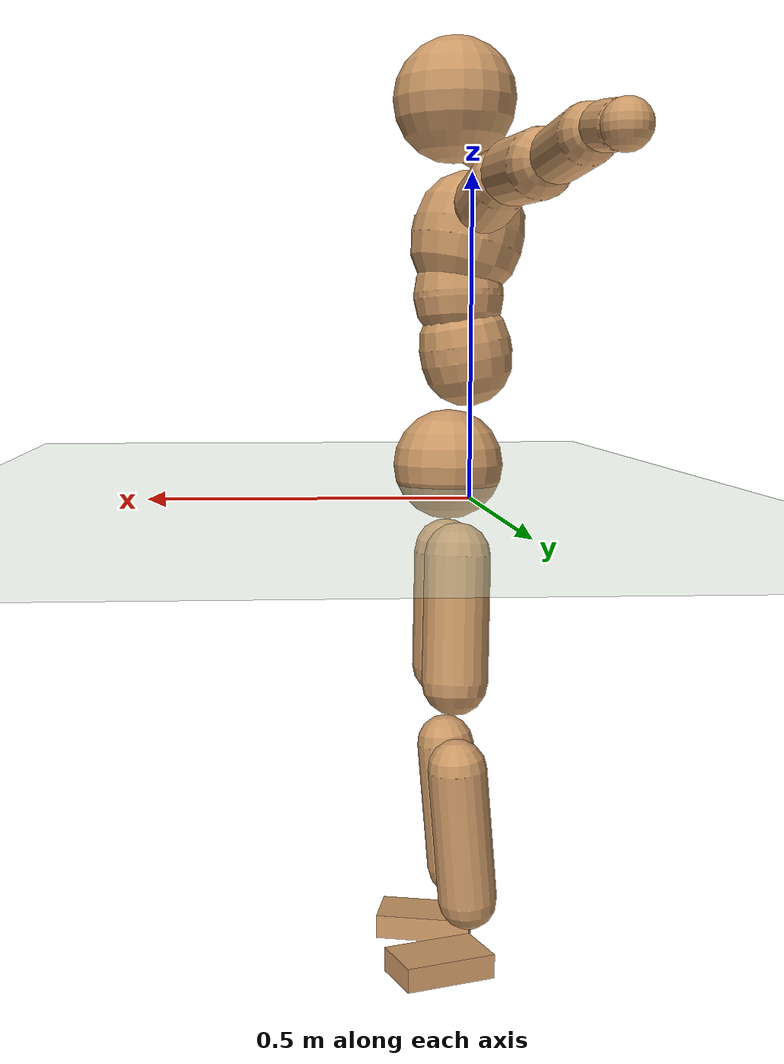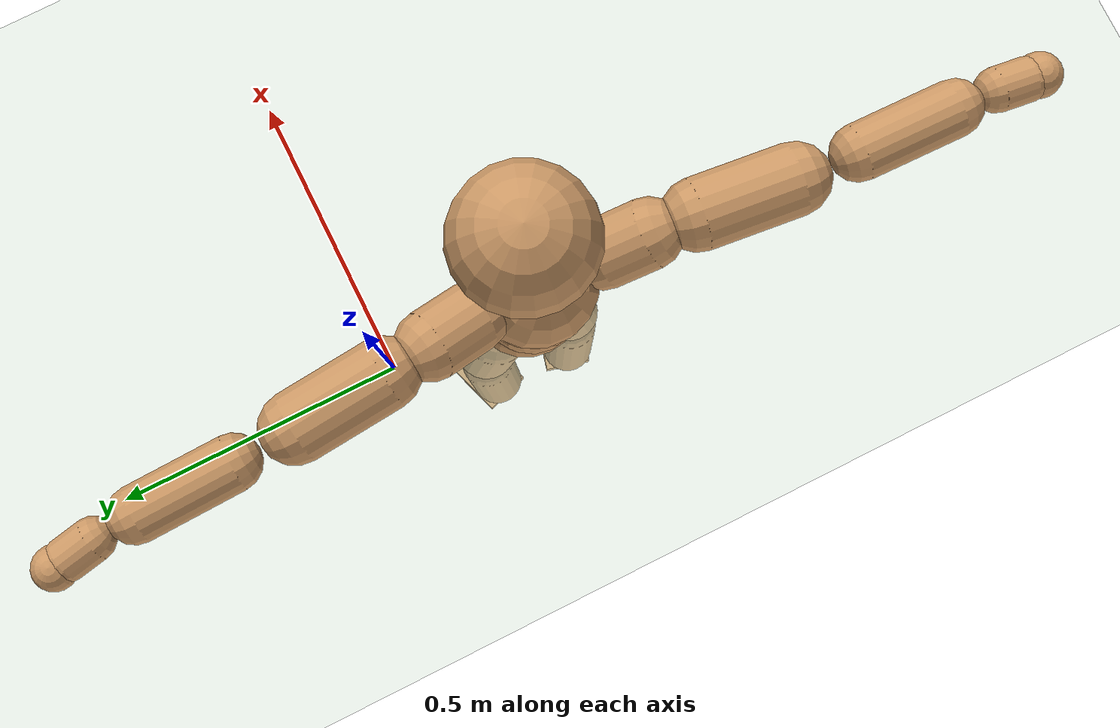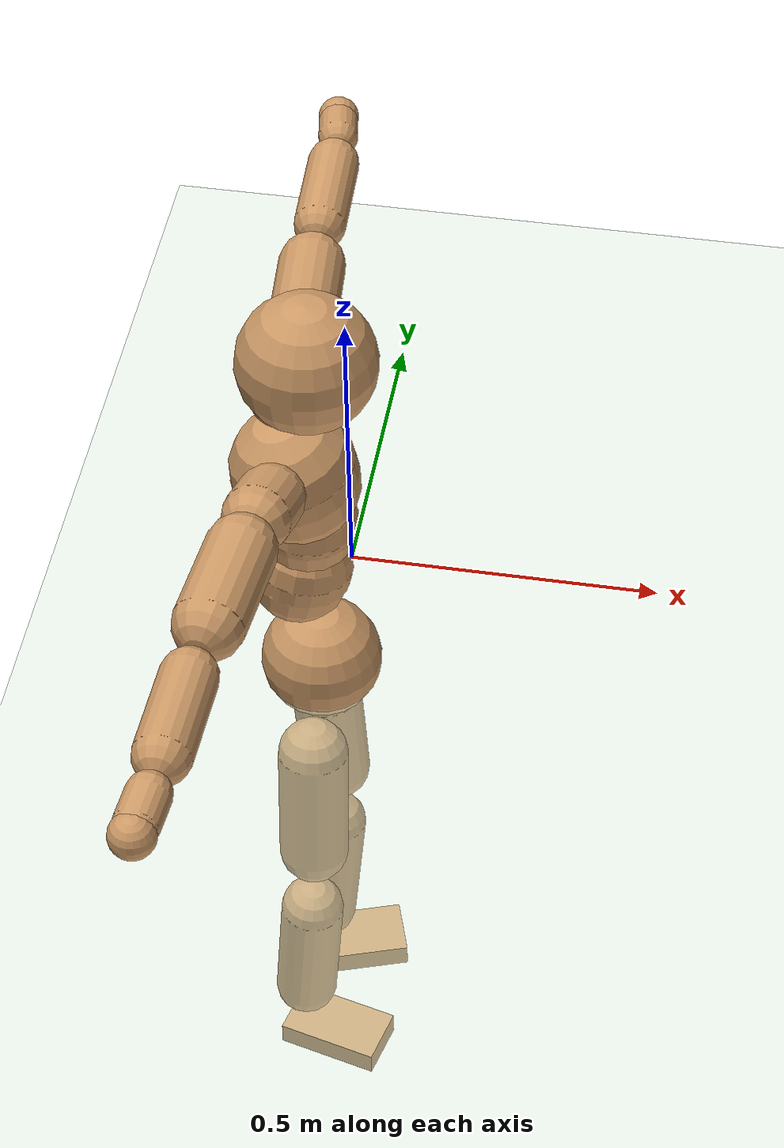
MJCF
<mujoco model="humanoid">
  <compiler coordinate="local"/>
  <default>
    <joint damping="0.0" armature="0.01" stiffness="0.0" limited="true"/>
    <geom conaffinity="1" condim="3" contype="7" margin="0.001" rgba="0.8 0.6 .4 1"/>
  </default>
  <asset>
    <texture type="skybox" builtin="gradient" rgb1=".4 .5 .6" rgb2="0 0 0" width="100" height="100"/>
    <texture builtin="flat" height="1278" mark="cross" markrgb="1 1 1" name="texgeom" random="0.01" rgb1="0.8 0.6 0.4" rgb2="0.8 0.6 0.4" type="cube" width="127"/>
    <texture builtin="checker" height="100" name="texplane" rgb1="0 0 0" rgb2="0.8 0.8 0.8" type="2d" width="100"/>
    <material name="MatPlane" reflectance="0.5" shininess="1" specular="1" texrepeat="60 60" texture="texplane"/>
    <material name="geom" texture="texgeom" texuniform="true"/>
  </asset>
  <worldbody>
    <light cutoff="100" diffuse="1 1 1" dir="-0 0 -1.3" directional="true" exponent="1" pos="0 0 1.3" specular=".1 .1 .1"/>
    <geom conaffinity="1" condim="3" name="floor" pos="0 0 0" rgba="0.8 0.9 0.8 1" size="100 100 .2" type="plane" material="MatPlane"/>
    <body name="Pelvis" pos="-0.0011 -0.2481 0.0335">
      <freejoint name="Pelvis"/>
      <geom type="sphere" contype="1" conaffinity="1" density="500" size="0.0949" pos="0.0000 0.0000 0.0000" name="Pelvis"/>
      <body name="L_Hip" pos="-0.0107 0.0555 -0.0796">
        <joint name="L_Hip_x" type="hinge" pos="0 0 0" axis="1 0 0" stiffness="800" damping="80" armature="0.02" range="-180.0000 180.0000"/>
        <joint name="L_Hip_y" type="hinge" pos="0 0 0" axis="0 1 0" stiffness="800" damping="80" armature="0.02" range="-180.0000 180.0000"/>
        <joint name="L_Hip_z" type="hinge" pos="0 0 0" axis="0 0 1" stiffness="800" damping="80" armature="0.02" range="-180.0000 180.0000"/>
        <geom type="capsule" contype="1" conaffinity="1" density="500" fromto="0.0020 0.0078 -0.0717 0.0081 0.0312 -0.2867" size="0.0564" name="L_Hip"/>
        <body name="L_Knee" pos="0.0101 0.039 -0.3584">
          <joint name="L_Knee_x" type="hinge" pos="0 0 0" axis="1 0 0" stiffness="800" damping="80" armature="0.02" range="-180.0000 180.0000"/>
          <joint name="L_Knee_y" type="hinge" pos="0 0 0" axis="0 1 0" stiffness="800" damping="80" armature="0.02" range="-180.0000 180.0000"/>
          <joint name="L_Knee_z" type="hinge" pos="0 0 0" axis="0 0 1" stiffness="800" damping="80" armature="0.02" range="-180.0000 180.0000"/>
          <geom type="capsule" contype="1" conaffinity="1" density="500" fromto="-0.0071 -0.0027 -0.0785 -0.0284 -0.0108 -0.3138" size="0.051" name="L_Knee"/>
          <body name="L_Ankle" pos="-0.0356 -0.0136 -0.3923">
            <joint name="L_Ankle_x" type="hinge" pos="0 0 0" axis="1 0 0" stiffness="800" damping="80" armature="0.02" range="-180.0000 180.0000"/>
            <joint name="L_Ankle_y" type="hinge" pos="0 0 0" axis="0 1 0" stiffness="800" damping="80" armature="0.02" range="-180.0000 180.0000"/>
            <joint name="L_Ankle_z" type="hinge" pos="0 0 0" axis="0 0 1" stiffness="800" damping="80" armature="0.02" range="-180.0000 180.0000"/>
            <geom type="box" contype="1" conaffinity="1" density="500" pos="0.0577 0.0191 -0.0279" size="0.082 0.0488 0.0211" quat="0.9873 0.0000 0.0000 0.1589" name="L_Ankle"/>
            <body name="L_Toe" pos="0.1154 0.0381 -0.0558">
              <joint name="L_Toe_x" type="hinge" pos="0 0 0" axis="1 0 0" stiffness="500" damping="50" armature="0.02" range="-180.0000 180.0000"/>
              <joint name="L_Toe_y" type="hinge" pos="0 0 0" axis="0 1 0" stiffness="500" damping="50" armature="0.02" range="-180.0000 180.0000"/>
              <joint name="L_Toe_z" type="hinge" pos="0 0 0" axis="0 0 1" stiffness="500" damping="50" armature="0.02" range="-180.0000 180.0000"/>
              <geom type="box" contype="1" conaffinity="1" density="500" pos="0.0000 0.0000 0.0283" size="0.001 0.0024 0.0011" quat="0.9865 0.0000 0.0000 0.1640" name="L_Toe"/>
            </body>
          </body>
        </body>
      </body>
      <body name="R_Hip" pos="-0.0065 -0.0567 -0.0883">
        <joint name="R_Hip_x" type="hinge" pos="0 0 0" axis="1 0 0" stiffness="800" damping="80" armature="0.02" range="-180.0000 180.0000"/>
        <joint name="R_Hip_y" type="hinge" pos="0 0 0" axis="0 1 0" stiffness="800" damping="80" armature="0.02" range="-180.0000 180.0000"/>
        <joint name="R_Hip_z" type="hinge" pos="0 0 0" axis="0 0 1" stiffness="800" damping="80" armature="0.02" range="-180.0000 180.0000"/>
        <geom type="capsule" contype="1" conaffinity="1" density="500" fromto="-0.0000 -0.0079 -0.0713 -0.0002 -0.0316 -0.2851" size="0.0561" name="R_Hip"/>
        <body name="R_Knee" pos="-0.0002 -0.0395 -0.3564">
          <joint name="R_Knee_x" type="hinge" pos="0 0 0" axis="1 0 0" stiffness="800" damping="80" armature="0.02" range="-180.0000 180.0000"/>
          <joint name="R_Knee_y" type="hinge" pos="0 0 0" axis="0 1 0" stiffness="800" damping="80" armature="0.02" range="-180.0000 180.0000"/>
          <joint name="R_Knee_z" type="hinge" pos="0 0 0" axis="0 0 1" stiffness="800" damping="80" armature="0.02" range="-180.0000 180.0000"/>
          <geom type="capsule" contype="1" conaffinity="1" density="500" fromto="-0.0064 0.0035 -0.0773 -0.0257 0.0138 -0.3092" size="0.0516" name="R_Knee"/>
          <body name="R_Ankle" pos="-0.0321 0.0173 -0.3865">
            <joint name="R_Ankle_x" type="hinge" pos="0 0 0" axis="1 0 0" stiffness="800" damping="80" armature="0.02" range="-180.0000 180.0000"/>
            <joint name="R_Ankle_y" type="hinge" pos="0 0 0" axis="0 1 0" stiffness="800" damping="80" armature="0.02" range="-180.0000 180.0000"/>
            <joint name="R_Ankle_z" type="hinge" pos="0 0 0" axis="0 0 1" stiffness="800" damping="80" armature="0.02" range="-180.0000 180.0000"/>
            <geom type="box" contype="1" conaffinity="1" density="500" pos="0.0608 -0.0149 -0.0295" size="0.0846 0.0478 0.0211" quat="0.9927 0.0000 0.0000 -0.1202" name="R_Ankle"/>
            <body name="R_Toe" pos="0.1216 -0.0299 -0.059">
              <joint name="R_Toe_x" type="hinge" pos="0 0 0" axis="1 0 0" stiffness="500" damping="50" armature="0.02" range="-180.0000 180.0000"/>
              <joint name="R_Toe_y" type="hinge" pos="0 0 0" axis="0 1 0" stiffness="500" damping="50" armature="0.02" range="-180.0000 180.0000"/>
              <joint name="R_Toe_z" type="hinge" pos="0 0 0" axis="0 0 1" stiffness="500" damping="50" armature="0.02" range="-180.0000 180.0000"/>
              <geom type="box" contype="1" conaffinity="1" density="500" pos="0.0000 0.0000 0.0297" size="0.0011 0.0024 0.0011" quat="0.9938 0.0000 0.0000 -0.1108" name="R_Toe"/>
            </body>
          </body>
        </body>
      </body>
      <body name="Torso" pos="-0.0406 0.0041 0.1245">
        <joint name="Torso_x" type="hinge" pos="0 0 0" axis="1 0 0" stiffness="1000" damping="100" armature="0.02" range="-180.0000 180.0000"/>
        <joint name="Torso_y" type="hinge" pos="0 0 0" axis="0 1 0" stiffness="1000" damping="100" armature="0.02" range="-180.0000 180.0000"/>
        <joint name="Torso_z" type="hinge" pos="0 0 0" axis="0 0 1" stiffness="1000" damping="100" armature="0.02" range="-180.0000 180.0000"/>
        <geom type="capsule" contype="1" conaffinity="1" density="500" fromto="0.0153 0.0032 0.0822 0.0102 0.0022 0.0548" size="0.07905" name="Torso"/>
        <body name="Spine" pos="0.0255 0.0054 0.137">
          <joint name="Spine_x" type="hinge" pos="0 0 0" axis="1 0 0" stiffness="1000" damping="100" armature="0.02" range="-180.0000 180.0000"/>
          <joint name="Spine_y" type="hinge" pos="0 0 0" axis="0 1 0" stiffness="1000" damping="100" armature="0.02" range="-180.0000 180.0000"/>
          <joint name="Spine_z" type="hinge" pos="0 0 0" axis="0 0 1" stiffness="1000" damping="100" armature="0.02" range="-180.0000 180.0000"/>
          <geom type="capsule" contype="1" conaffinity="1" density="500" fromto="0.0012 -0.0014 0.0332 0.0008 -0.0009 0.0221" size="0.076818" name="Spine"/>
          <body name="Chest" pos="0.0019 -0.0023 0.0553">
            <joint name="Chest_x" type="hinge" pos="0 0 0" axis="1 0 0" stiffness="1000" damping="100" armature="0.02" range="-180.0000 180.0000"/>
            <joint name="Chest_y" type="hinge" pos="0 0 0" axis="0 1 0" stiffness="1000" damping="100" armature="0.02" range="-180.0000 180.0000"/>
            <joint name="Chest_z" type="hinge" pos="0 0 0" axis="0 0 1" stiffness="1000" damping="100" armature="0.02" range="-180.0000 180.0000"/>
            <geom type="capsule" contype="1" conaffinity="1" density="500" fromto="-0.0196 -0.0054 0.0872 -0.0131 -0.0036 0.0581" size="0.095604" name="Chest"/>
            <body name="Neck" pos="-0.0435 -0.013 0.2114">
              <joint name="Neck_x" type="hinge" pos="0 0 0" axis="1 0 0" stiffness="500" damping="50" armature="0.02" range="-180.0000 180.0000"/>
              <joint name="Neck_y" type="hinge" pos="0 0 0" axis="0 1 0" stiffness="500" damping="50" armature="0.02" range="-180.0000 180.0000"/>
              <joint name="Neck_z" type="hinge" pos="0 0 0" axis="0 0 1" stiffness="500" damping="50" armature="0.02" range="-180.0000 180.0000"/>
              <geom type="capsule" contype="1" conaffinity="1" density="500" fromto="0.0102 0.0020 0.0173 0.0410 0.0079 0.0691" size="0.042687" name="Neck"/>
              <body name="Head" pos="0.0512 0.0099 0.0864">
                <joint name="Head_x" type="hinge" pos="0 0 0" axis="1 0 0" stiffness="500" damping="50" armature="0.02" range="-180.0000 180.0000"/>
                <joint name="Head_y" type="hinge" pos="0 0 0" axis="0 1 0" stiffness="500" damping="50" armature="0.02" range="-180.0000 180.0000"/>
                <joint name="Head_z" type="hinge" pos="0 0 0" axis="0 0 1" stiffness="500" damping="50" armature="0.02" range="-180.0000 180.0000"/>
                <geom type="sphere" contype="1" conaffinity="1" density="500" size="0.1051" pos="0.0000 0.0000 0.0000" name="Head"/>
              </body>
            </body>
            <body name="L_Thorax" pos="-0.0259 0.0701 0.1123">
              <joint name="L_Thorax_x" type="hinge" pos="0 0 0" axis="1 0 0" stiffness="500" damping="50" armature="0.02" range="-180.0000 180.0000"/>
              <joint name="L_Thorax_y" type="hinge" pos="0 0 0" axis="0 1 0" stiffness="500" damping="50" armature="0.02" range="-180.0000 180.0000"/>
              <joint name="L_Thorax_z" type="hinge" pos="0 0 0" axis="0 0 1" stiffness="500" damping="50" armature="0.02" range="-180.0000 180.0000"/>
              <geom type="capsule" contype="1" conaffinity="1" density="500" fromto="-0.0041 0.0243 0.0081 -0.0165 0.0971 0.0326" size="0.0515" name="L_Thorax"/>
              <body name="L_Shoulder" pos="-0.0206 0.1214 0.0407">
                <joint name="L_Shoulder_x" type="hinge" pos="0 0 0" axis="1 0 0" stiffness="500" damping="50" armature="0.02" range="-720.0000 720.0000"/>
                <joint name="L_Shoulder_y" type="hinge" pos="0 0 0" axis="0 1 0" stiffness="500" damping="50" armature="0.02" range="-720.0000 720.0000"/>
                <joint name="L_Shoulder_z" type="hinge" pos="0 0 0" axis="0 0 1" stiffness="500" damping="50" armature="0.02" range="-720.0000 720.0000"/>
                <geom type="capsule" contype="1" conaffinity="1" density="500" fromto="-0.0040 0.0471 -0.0018 -0.0158 0.1885 -0.0073" size="0.0525" name="L_Shoulder"/>
                <body name="L_Elbow" pos="-0.0198 0.2357 -0.0091">
                  <joint name="L_Elbow_x" type="hinge" pos="0 0 0" axis="1 0 0" stiffness="500" damping="50" armature="0.02" range="-720.0000 720.0000"/>
                  <joint name="L_Elbow_y" type="hinge" pos="0 0 0" axis="0 1 0" stiffness="500" damping="50" armature="0.02" range="-720.0000 720.0000"/>
                  <joint name="L_Elbow_z" type="hinge" pos="0 0 0" axis="0 0 1" stiffness="500" damping="50" armature="0.02" range="-720.0000 720.0000"/>
                  <geom type="capsule" contype="1" conaffinity="1" density="500" fromto="-0.0018 0.0486 0.0020 -0.0071 0.1944 0.0080" size="0.0412" name="L_Elbow"/>
                  <body name="L_Wrist" pos="-0.0088 0.243 0.01">
                    <joint name="L_Wrist_x" type="hinge" pos="0 0 0" axis="1 0 0" stiffness="300" damping="30" armature="0.02" range="-180.0000 180.0000"/>
                    <joint name="L_Wrist_y" type="hinge" pos="0 0 0" axis="0 1 0" stiffness="300" damping="30" armature="0.02" range="-180.0000 180.0000"/>
                    <joint name="L_Wrist_z" type="hinge" pos="0 0 0" axis="0 0 1" stiffness="300" damping="30" armature="0.02" range="-180.0000 180.0000"/>
                    <geom type="capsule" contype="1" conaffinity="1" density="500" fromto="-0.0028 0.0159 -0.0019 -0.0110 0.0635 -0.0076" size="0.0319" name="L_Wrist"/>
                    <body name="L_Hand" pos="-0.0138 0.0794 -0.0095">
                      <joint name="L_Hand_x" type="hinge" pos="0 0 0" axis="1 0 0" stiffness="300" damping="30" armature="0.02" range="-180.0000 180.0000"/>
                      <joint name="L_Hand_y" type="hinge" pos="0 0 0" axis="0 1 0" stiffness="300" damping="30" armature="0.02" range="-180.0000 180.0000"/>
                      <joint name="L_Hand_z" type="hinge" pos="0 0 0" axis="0 0 1" stiffness="300" damping="30" armature="0.02" range="-180.0000 180.0000"/>
                      <geom type="sphere" contype="1" conaffinity="1" density="500" size="0.0328" pos="0.0000 0.0000 0.0000" name="L_Hand"/>
                    </body>
                  </body>
                </body>
              </body>
            </body>
            <body name="R_Thorax" pos="-0.0288 -0.084 0.1121">
              <joint name="R_Thorax_x" type="hinge" pos="0 0 0" axis="1 0 0" stiffness="500" damping="50" armature="0.02" range="-180.0000 180.0000"/>
              <joint name="R_Thorax_y" type="hinge" pos="0 0 0" axis="0 1 0" stiffness="500" damping="50" armature="0.02" range="-180.0000 180.0000"/>
              <joint name="R_Thorax_z" type="hinge" pos="0 0 0" axis="0 0 1" stiffness="500" damping="50" armature="0.02" range="-180.0000 180.0000"/>
              <geom type="capsule" contype="1" conaffinity="1" density="500" fromto="-0.0021 -0.0225 0.0084 -0.0083 -0.0899 0.0334" size="0.0518" name="R_Thorax"/>
              <body name="R_Shoulder" pos="-0.0103 -0.1124 0.0418">
                <joint name="R_Shoulder_x" type="hinge" pos="0 0 0" axis="1 0 0" stiffness="500" damping="50" armature="0.02" range="-720.0000 720.0000"/>
                <joint name="R_Shoulder_y" type="hinge" pos="0 0 0" axis="0 1 0" stiffness="500" damping="50" armature="0.02" range="-720.0000 720.0000"/>
                <joint name="R_Shoulder_z" type="hinge" pos="0 0 0" axis="0 0 1" stiffness="500" damping="50" armature="0.02" range="-720.0000 720.0000"/>
                <geom type="capsule" contype="1" conaffinity="1" density="500" fromto="-0.0051 -0.0485 -0.0012 -0.0203 -0.1939 -0.0049" size="0.0533" name="R_Shoulder"/>
                <body name="R_Elbow" pos="-0.0253 -0.2423 -0.0061">
                  <joint name="R_Elbow_x" type="hinge" pos="0 0 0" axis="1 0 0" stiffness="500" damping="50" armature="0.02" range="-720.0000 720.0000"/>
                  <joint name="R_Elbow_y" type="hinge" pos="0 0 0" axis="0 1 0" stiffness="500" damping="50" armature="0.02" range="-720.0000 720.0000"/>
                  <joint name="R_Elbow_z" type="hinge" pos="0 0 0" axis="0 0 1" stiffness="500" damping="50" armature="0.02" range="-720.0000 720.0000"/>
                  <geom type="capsule" contype="1" conaffinity="1" density="500" fromto="-0.0013 -0.0495 0.0013 -0.0052 -0.1978 0.0052" size="0.0422" name="R_Elbow"/>
                  <body name="R_Wrist" pos="-0.0065 -0.2473 0.0065">
                    <joint name="R_Wrist_x" type="hinge" pos="0 0 0" axis="1 0 0" stiffness="300" damping="30" armature="0.02" range="-180.0000 180.0000"/>
                    <joint name="R_Wrist_y" type="hinge" pos="0 0 0" axis="0 1 0" stiffness="300" damping="30" armature="0.02" range="-180.0000 180.0000"/>
                    <joint name="R_Wrist_z" type="hinge" pos="0 0 0" axis="0 0 1" stiffness="300" damping="30" armature="0.02" range="-180.0000 180.0000"/>
                    <geom type="capsule" contype="1" conaffinity="1" density="500" fromto="-0.0018 -0.0166 -0.0016 -0.0072 -0.0663 -0.0063" size="0.033" name="R_Wrist"/>
                    <body name="R_Hand" pos="-0.009 -0.0829 -0.0079">
                      <joint name="R_Hand_x" type="hinge" pos="0 0 0" axis="1 0 0" stiffness="300" damping="30" armature="0.02" range="-180.0000 180.0000"/>
                      <joint name="R_Hand_y" type="hinge" pos="0 0 0" axis="0 1 0" stiffness="300" damping="30" armature="0.02" range="-180.0000 180.0000"/>
                      <joint name="R_Hand_z" type="hinge" pos="0 0 0" axis="0 0 1" stiffness="300" damping="30" armature="0.02" range="-180.0000 180.0000"/>
                      <geom type="sphere" contype="1" conaffinity="1" density="500" size="0.0339" pos="0.0000 0.0000 0.0000" name="R_Hand"/>
                    </body>
                  </body>
                </body>
              </body>
            </body>
          </body>
        </body>
      </body>
    </body>
  </worldbody>
  <actuator>
    <motor name="L_Hip_x" joint="L_Hip_x" gear="500"/>
    <motor name="L_Hip_y" joint="L_Hip_y" gear="500"/>
    <motor name="L_Hip_z" joint="L_Hip_z" gear="500"/>
    <motor name="L_Knee_x" joint="L_Knee_x" gear="500"/>
    <motor name="L_Knee_y" joint="L_Knee_y" gear="500"/>
    <motor name="L_Knee_z" joint="L_Knee_z" gear="500"/>
    <motor name="L_Ankle_x" joint="L_Ankle_x" gear="500"/>
    <motor name="L_Ankle_y" joint="L_Ankle_y" gear="500"/>
    <motor name="L_Ankle_z" joint="L_Ankle_z" gear="500"/>
    <motor name="L_Toe_x" joint="L_Toe_x" gear="500"/>
    <motor name="L_Toe_y" joint="L_Toe_y" gear="500"/>
    <motor name="L_Toe_z" joint="L_Toe_z" gear="500"/>
    <motor name="R_Hip_x" joint="R_Hip_x" gear="500"/>
    <motor name="R_Hip_y" joint="R_Hip_y" gear="500"/>
    <motor name="R_Hip_z" joint="R_Hip_z" gear="500"/>
    <motor name="R_Knee_x" joint="R_Knee_x" gear="500"/>
    <motor name="R_Knee_y" joint="R_Knee_y" gear="500"/>
    <motor name="R_Knee_z" joint="R_Knee_z" gear="500"/>
    <motor name="R_Ankle_x" joint="R_Ankle_x" gear="500"/>
    <motor name="R_Ankle_y" joint="R_Ankle_y" gear="500"/>
    <motor name="R_Ankle_z" joint="R_Ankle_z" gear="500"/>
    <motor name="R_Toe_x" joint="R_Toe_x" gear="500"/>
    <motor name="R_Toe_y" joint="R_Toe_y" gear="500"/>
    <motor name="R_Toe_z" joint="R_Toe_z" gear="500"/>
    <motor name="Torso_x" joint="Torso_x" gear="500"/>
    <motor name="Torso_y" joint="Torso_y" gear="500"/>
    <motor name="Torso_z" joint="Torso_z" gear="500"/>
    <motor name="Spine_x" joint="Spine_x" gear="500"/>
    <motor name="Spine_y" joint="Spine_y" gear="500"/>
    <motor name="Spine_z" joint="Spine_z" gear="500"/>
    <motor name="Chest_x" joint="Chest_x" gear="500"/>
    <motor name="Chest_y" joint="Chest_y" gear="500"/>
    <motor name="Chest_z" joint="Chest_z" gear="500"/>
    <motor name="Neck_x" joint="Neck_x" gear="500"/>
    <motor name="Neck_y" joint="Neck_y" gear="500"/>
    <motor name="Neck_z" joint="Neck_z" gear="500"/>
    <motor name="Head_x" joint="Head_x" gear="500"/>
    <motor name="Head_y" joint="Head_y" gear="500"/>
    <motor name="Head_z" joint="Head_z" gear="500"/>
    <motor name="L_Thorax_x" joint="L_Thorax_x" gear="500"/>
    <motor name="L_Thorax_y" joint="L_Thorax_y" gear="500"/>
    <motor name="L_Thorax_z" joint="L_Thorax_z" gear="500"/>
    <motor name="L_Shoulder_x" joint="L_Shoulder_x" gear="500"/>
    <motor name="L_Shoulder_y" joint="L_Shoulder_y" gear="500"/>
    <motor name="L_Shoulder_z" joint="L_Shoulder_z" gear="500"/>
    <motor name="L_Elbow_x" joint="L_Elbow_x" gear="500"/>
    <motor name="L_Elbow_y" joint="L_Elbow_y" gear="500"/>
    <motor name="L_Elbow_z" joint="L_Elbow_z" gear="500"/>
    <motor name="L_Wrist_x" joint="L_Wrist_x" gear="500"/>
    <motor name="L_Wrist_y" joint="L_Wrist_y" gear="500"/>
    <motor name="L_Wrist_z" joint="L_Wrist_z" gear="500"/>
    <motor name="L_Hand_x" joint="L_Hand_x" gear="500"/>
    <motor name="L_Hand_y" joint="L_Hand_y" gear="500"/>
    <motor name="L_Hand_z" joint="L_Hand_z" gear="500"/>
    <motor name="R_Thorax_x" joint="R_Thorax_x" gear="500"/>
    <motor name="R_Thorax_y" joint="R_Thorax_y" gear="500"/>
    <motor name="R_Thorax_z" joint="R_Thorax_z" gear="500"/>
    <motor name="R_Shoulder_x" joint="R_Shoulder_x" gear="500"/>
    <motor name="R_Shoulder_y" joint="R_Shoulder_y" gear="500"/>
    <motor name="R_Shoulder_z" joint="R_Shoulder_z" gear="500"/>
    <motor name="R_Elbow_x" joint="R_Elbow_x" gear="500"/>
    <motor name="R_Elbow_y" joint="R_Elbow_y" gear="500"/>
    <motor name="R_Elbow_z" joint="R_Elbow_z" gear="500"/>
    <motor name="R_Wrist_x" joint="R_Wrist_x" gear="500"/>
    <motor name="R_Wrist_y" joint="R_Wrist_y" gear="500"/>
    <motor name="R_Wrist_z" joint="R_Wrist_z" gear="500"/>
    <motor name="R_Hand_x" joint="R_Hand_x" gear="500"/>
    <motor name="R_Hand_y" joint="R_Hand_y" gear="500"/>
    <motor name="R_Hand_z" joint="R_Hand_z" gear="500"/>
  </actuator>
  <contact>
    <exclude body1="Torso" body2="Chest"/>
    <exclude body1="Head" body2="Chest"/>
    <exclude body1="R_Knee" body2="R_Toe"/>
    <exclude body1="R_Knee" body2="L_Ankle"/>
    <exclude body1="R_Knee" body2="L_Toe"/>
    <exclude body1="L_Knee" body2="L_Toe"/>
    <exclude body1="L_Knee" body2="R_Ankle"/>
    <exclude body1="L_Knee" body2="R_Toe"/>
    <exclude body1="L_Shoulder" body2="Chest"/>
    <exclude body1="R_Shoulder" body2="Chest"/>
  </contact>
  <sensor/>
  <size njmax="700" nconmax="700"/>
</mujoco>
